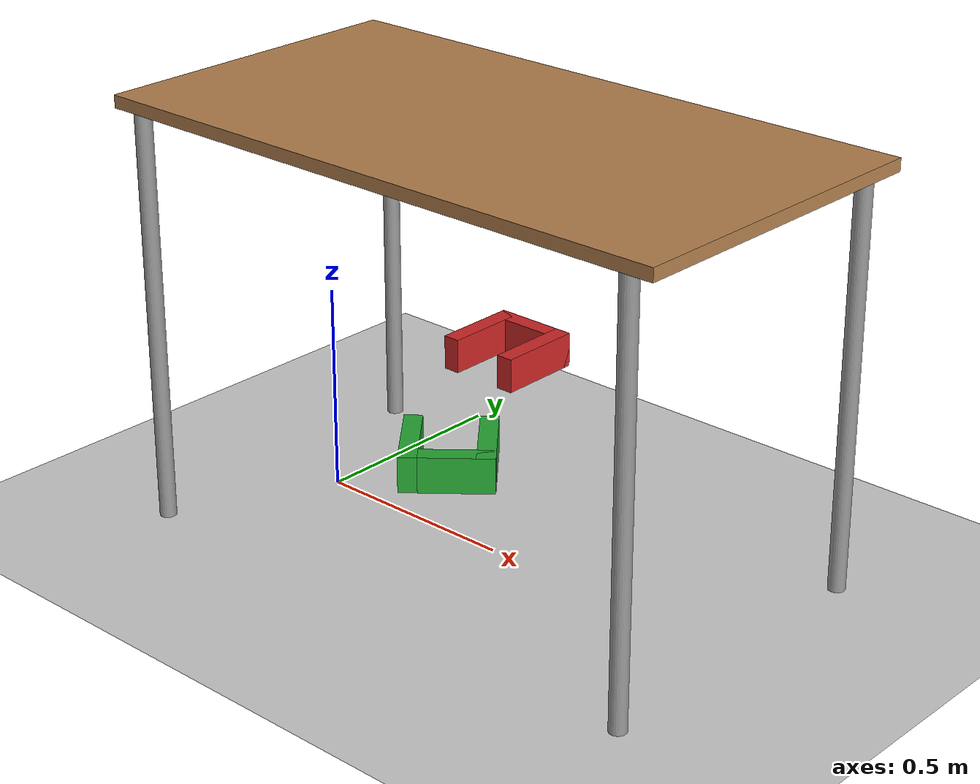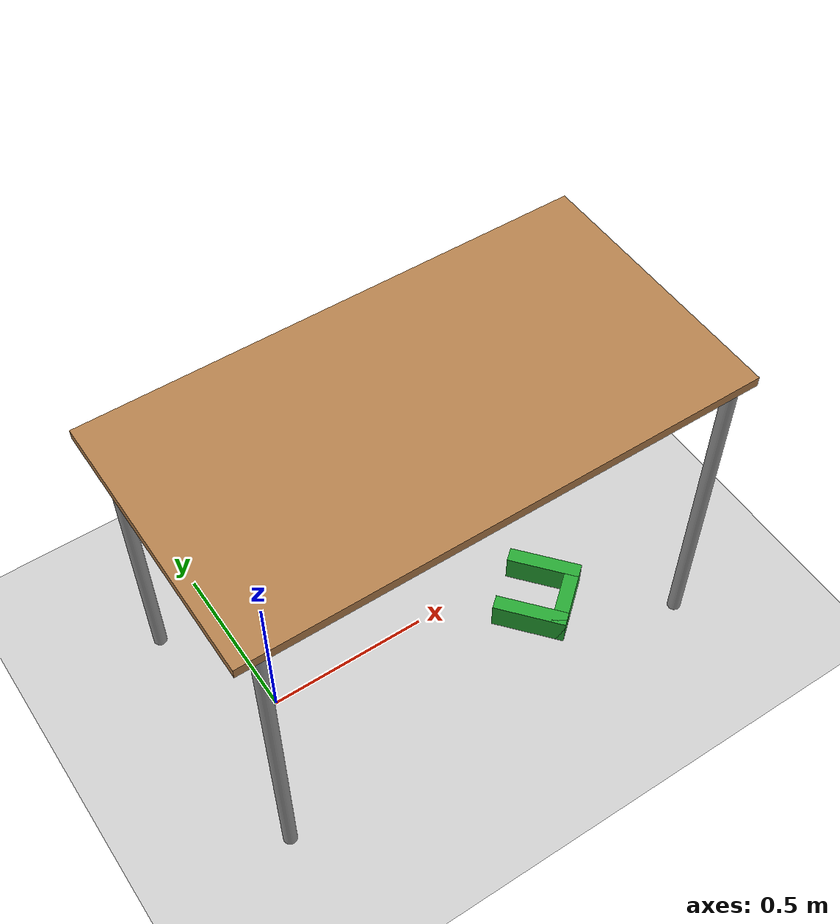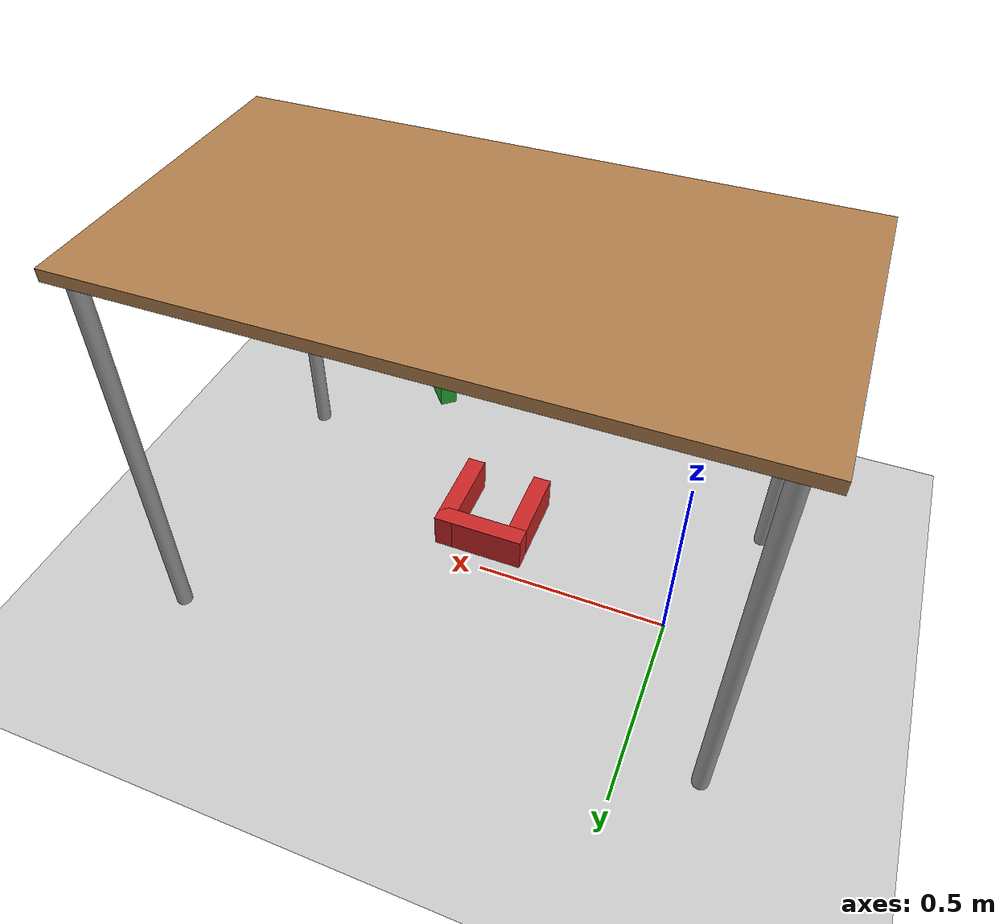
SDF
<?xml version="1.0" ?>
<sdf version="1.6">
  <world name="panda_reaching">
    <gui>
    <camera name="user_camera">
      <pose>1.9938 0.1248 1.905 0 0.8058 -3.1229</pose>
    </camera>
  </gui>
    <!--A global light source-->
    <include>
      <uri>model://sun</uri>
    </include>
    <!--A ground plane-->
    <include>
      <uri>model://ground_plane</uri>
    </include>
    <!--A Table-->
    <include>
      <uri>model://table</uri>
      <name>table</name>
      <pose>0.5 0.0 0.0 0 0 0</pose>
      <static>1</static>
    </include>
    <!--Start frame-->
    <include>
      <uri>model://green_frame</uri>
      <name>startFrame</name>
      <pose>0.67 -0.32 0.40 0 0 -0.8708</pose>
      <static>1</static>
    </include>
    <!--End frame-->
    <include>
      <uri>model://red_frame</uri>
      <name>endFrame</name>
      <pose>0.41 0.15 0.40 0 0 1.5708</pose> <!-- 1.5708=pi/2 -->
      <static>1</static>
    </include>
  </world>
</sdf>

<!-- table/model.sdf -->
<sdf version="1.5">
  <model name="table">
    <static>true</static>
    <link name="link">
      <collision name="surface">
        <pose>0 0 1.0 0 0 0</pose>
        <geometry>
          <box>
            <size>1.5 0.8 0.03</size>
          </box>
        </geometry>
        <surface>
          <friction>
            <ode>
              <mu>0.6</mu>
              <mu2>0.6</mu2>
            </ode>
          </friction>
        </surface>
      </collision>
      <visual name="visual1">
        <pose>0 0 1.0 0 0 0</pose>
        <geometry>
          <box>
            <size>1.5 0.8 0.03</size>
          </box>
        </geometry>
        <material>
          <script>
            <uri>model://media/materials/scripts/gazebo.material</uri>
            <name>Gazebo/Wood</name>
          </script>
        </material>
      </visual>
      <collision name="front_left_leg">
        <pose>0.68 0.38 0.5 0 0 0</pose>
        <geometry>
          <cylinder>
            <radius>0.02</radius>
            <length>1.0</length>
          </cylinder>
        </geometry>
      </collision>
      <visual name="front_left_leg">
        <pose>0.68 0.38 0.5 0 0 0</pose>
        <geometry>
          <cylinder>
            <radius>0.02</radius>
            <length>1.0</length>
          </cylinder>
        </geometry>
        <material>
          <script>
            <uri>model://media/materials/scripts/gazebo.material</uri>
            <name>Gazebo/Grey</name>
          </script>
        </material>
      </visual>
      <collision name="front_right_leg">
        <pose>0.68 -0.38 0.5 0 0 0</pose>
        <geometry>
          <cylinder>
            <radius>0.02</radius>
            <length>1.0</length>
          </cylinder>
        </geometry>
      </collision>
      <visual name="front_right_leg">
        <pose>0.68 -0.38 0.5 0 0 0</pose>
        <geometry>
          <cylinder>
            <radius>0.02</radius>
            <length>1.0</length>
          </cylinder>
        </geometry>
        <material>
          <script>
            <uri>model://media/materials/scripts/gazebo.material</uri>
            <name>Gazebo/Grey</name>
          </script>
        </material>
      </visual>
      <collision name="back_right_leg">
        <pose>-0.68 -0.38 0.5 0 0 0</pose>
        <geometry>
          <cylinder>
            <radius>0.02</radius>
            <length>1.0</length>
          </cylinder>
        </geometry>
      </collision>
      <visual name="back_right_leg">
        <pose>-0.68 -0.38 0.5 0 0 0</pose>
        <geometry>
          <cylinder>
            <radius>0.02</radius>
            <length>1.0</length>
          </cylinder>
        </geometry>
        <material>
          <script>
            <uri>model://media/materials/scripts/gazebo.material</uri>
            <name>Gazebo/Grey</name>
          </script>
        </material>
      </visual>
      <collision name="back_left_leg">
        <pose>-0.68 0.38 0.5 0 0 0</pose>
        <geometry>
          <cylinder>
            <radius>0.02</radius>
            <length>1.0</length>
          </cylinder>
        </geometry>
      </collision>
      <visual name="back_left_leg">
        <pose>-0.68 0.38 0.5 0 0 0</pose>
        <geometry>
          <cylinder>
            <radius>0.02</radius>
            <length>1.0</length>
          </cylinder>
        </geometry>
        <material>
          <script>
            <uri>model://media/materials/scripts/gazebo.material</uri>
            <name>Gazebo/Grey</name>
          </script>
        </material>
      </visual>
    </link>
  </model>
</sdf>

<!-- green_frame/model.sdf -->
<sdf version='1.6'>
  <model name='green_frame'>
    <pose>0 0 0 0 0 0</pose>

    <link name='Wall_0'>
      <collision name='Wall_0_Collision'>
        <geometry>
          <box>
            <size>0.2 0.04 0.08</size>
          </box>
        </geometry>
        <pose>0 0 0.02 0 -0 0</pose>
      </collision>
      <visual name='Wall_0_Visual'>
        <pose>0 0 0.02 0 -0 0</pose>
        <geometry>
          <box>
            <size>0.2 0.04 0.08</size>
          </box>
        </geometry>
        <material>
          <script>
            <uri>file://media/materials/scripts/gazebo.material</uri>
            <name>Gazebo/GreenGlow</name>
          </script>
          <ambient>1 1 1 1</ambient>
        </material>
        <meta>
          <layer>0</layer>
        </meta>
      </visual>
      <pose> 0 -0.08 0 0 -0 0</pose>
    </link>

    <link name='Wall_1'>
      <collision name='Wall_1_Collision'>
        <geometry>
          <box>
            <size>0.2 0.04 0.08</size>
          </box>
        </geometry>
        <pose>0 0 0.02 0 -0 0</pose>
      </collision>
      <visual name='Wall_1_Visual'>
        <pose>0 0 0.02 0 -0 0</pose>
        <geometry>
          <box>
            <size>0.2 0.04 0.08</size>
          </box>
        </geometry>
        <material>
          <script>
            <uri>file://media/materials/scripts/gazebo.material</uri>
            <name>Gazebo/GreenGlow</name>
          </script>
          <ambient>1 1 1 1</ambient>
        </material>
        <meta>
          <layer>0</layer>
        </meta>
      </visual>
      <pose>0.08 0 0 0 -0 -1.5708</pose> <!-- -1.5708=-pi/2 -->
    </link>

    <link name='Wall_2'>
      <collision name='Wall_2_Collision'>
        <geometry>
          <box>
            <size>0.2 0.04 0.08</size>
          </box>
        </geometry>
        <pose>0 0 0.02 0 -0 0</pose>
      </collision>
      <visual name='Wall_2_Visual'>
        <pose>0 0 0.02 0 -0 0</pose>
        <geometry>
          <box>
            <size>0.2 0.04 0.08</size>
          </box>
        </geometry>
        <material>
          <script>
            <uri>file://media/materials/scripts/gazebo.material</uri>
            <name>Gazebo/GreenGlow</name>
          </script>
          <ambient>1 1 1 1</ambient>
        </material>
        <meta>
          <layer>0</layer>
        </meta>
      </visual>
      <pose>0 0.08 0 0 -0 3.14159</pose>
    </link>

    <static>1</static>
  </model>
</sdf>

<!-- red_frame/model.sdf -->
<sdf version='1.6'>
  <model name='red_frame'>
    <pose>0 0 0 0 0 0</pose>

    <link name='Wall_0'>
      <collision name='Wall_0_Collision'>
        <geometry>
          <box>
            <size>0.2 0.04 0.08</size>
          </box>
        </geometry>
        <pose>0 0 0.02 0 -0 0</pose>
      </collision>
      <visual name='Wall_0_Visual'>
        <pose>0 0 0.02 0 -0 0</pose>
        <geometry>
          <box>
            <size>0.2 0.04 0.08</size>
          </box>
        </geometry>
        <material>
          <script>
            <uri>file://media/materials/scripts/gazebo.material</uri>
            <name>Gazebo/RedGlow</name>
          </script>
          <ambient>1 1 1 1</ambient>
        </material>
        <meta>
          <layer>0</layer>
        </meta>
      </visual>
      <pose> 0 -0.08 0 0 -0 0</pose>
    </link>

    <link name='Wall_1'>
      <collision name='Wall_1_Collision'>
        <geometry>
          <box>
            <size>0.2 0.04 0.08</size>
          </box>
        </geometry>
        <pose>0 0 0.02 0 -0 0</pose>
      </collision>
      <visual name='Wall_1_Visual'>
        <pose>0 0 0.02 0 -0 0</pose>
        <geometry>
          <box>
            <size>0.2 0.04 0.08</size>
          </box>
        </geometry>
        <material>
          <script>
            <uri>file://media/materials/scripts/gazebo.material</uri>
            <name>Gazebo/RedGlow</name>
          </script>
          <ambient>1 1 1 1</ambient>
        </material>
        <meta>
          <layer>0</layer>
        </meta>
      </visual>
      <pose>0.08 0 0 0 -0 -1.5708</pose> <!-- -1.5708=-pi/2 -->
    </link>

    <link name='Wall_2'>
      <collision name='Wall_2_Collision'>
        <geometry>
          <box>
            <size>0.2 0.04 0.08</size>
          </box>
        </geometry>
        <pose>0 0 0.02 0 -0 0</pose>
      </collision>
      <visual name='Wall_2_Visual'>
        <pose>0 0 0.02 0 -0 0</pose>
        <geometry>
          <box>
            <size>0.2 0.04 0.08</size>
          </box>
        </geometry>
        <material>
          <script>
            <uri>file://media/materials/scripts/gazebo.material</uri>
            <name>Gazebo/RedGlow</name>
          </script>
          <ambient>1 1 1 1</ambient>
        </material>
        <meta>
          <layer>0</layer>
        </meta>
      </visual>
      <pose>0 0.08 0 0 -0 3.14159</pose>
    </link>

    <static>1</static>
  </model>
</sdf>
